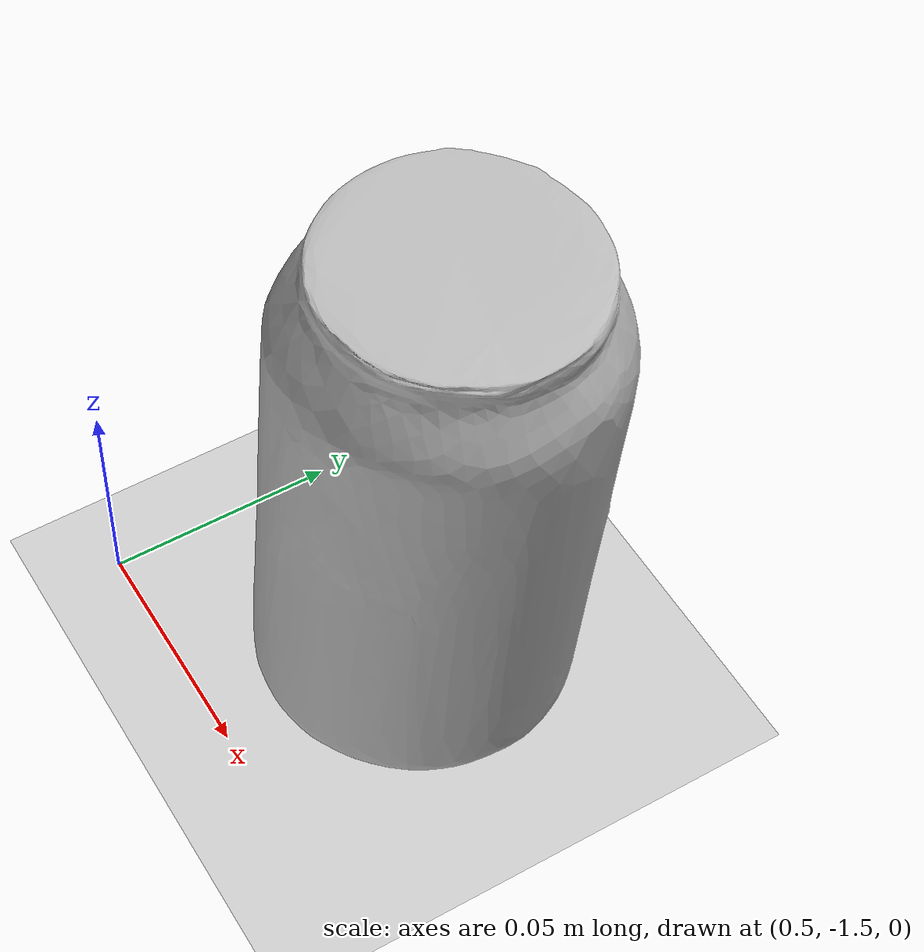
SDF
<sdf version="1.7">
 <world name="default">
  <light name="sun" type="directional">
   <pose>0 0 10 0 -0 0</pose>
   <diffuse>0.8 0.8 0.8 1</diffuse>
   <specular>0.2 0.2 0.2 1</specular>
   <attenuation>
    <range>1000</range>
    <constant>0.9</constant>
    <linear>0.01</linear>
    <quadratic>0.001</quadratic>
   </attenuation>
   <direction>-0.5 0.1 -0.9</direction>
   <spot><inner_angle>0</inner_angle><outer_angle>0</outer_angle><falloff>0</falloff></spot>
  </light>
  <model name="ground_plane">
   <static>1</static>
   <link name="link">
    <collision name="collision">
     <geometry><plane><normal>0 0 1</normal><size>100 100</size></plane></geometry>
     <surface>
      <contact><collide_bitmask>65535</collide_bitmask></contact>
      <friction><ode><mu>100</mu><mu2>50</mu2></ode></friction>
     </surface>
    </collision>
    <visual name="visual">
     <cast_shadows>0</cast_shadows>
     <geometry><plane><normal>0 0 1</normal><size>100 100</size></plane></geometry>
     <material>
      <script><uri>file://media/materials/scripts/gazebo.material</uri><name>Gazebo/Grey</name></script>
     </material>
    </visual>
   </link>
  </model>
  <gravity>0 0 -9.8</gravity>
  <magnetic_field>6e-06 2.3e-05 -4.2e-05</magnetic_field>
  <atmosphere type="adiabatic"/>
  <physics type="ode">
   <max_step_size>0.001</max_step_size>
   <real_time_factor>1</real_time_factor>
   <real_time_update_rate>1000</real_time_update_rate>
  </physics>
  <scene><ambient>0.4 0.4 0.4 1</ambient><background>0.7 0.7 0.7 1</background><shadows>1</shadows></scene>
  <audio><device>default</device></audio>
  <spherical_coordinates>
   <surface_model>EARTH_WGS84</surface_model>
   <latitude_deg>0</latitude_deg>
   <longitude_deg>0</longitude_deg>
   <elevation>0</elevation>
   <heading_deg>0</heading_deg>
  </spherical_coordinates>
  <model name="coke_can">
   <link name="link">
    <inertial>
     <pose>0 0 0.06 0 -0 0</pose>
     <mass>0.39</mass>
     <inertia>
      <ixx>0.00055575</ixx>
      <ixy>0</ixy>
      <ixz>0</ixz>
      <iyy>0.00055575</iyy>
      <iyz>0</iyz>
      <izz>0.0001755</izz>
     </inertia>
    </inertial>
    <collision name="collision">
     <pose>0.003937 0.004724 -0.18 0 -0 0</pose>
     <geometry><mesh><uri>model://coke_can/meshes/coke_can.dae</uri></mesh></geometry>
     <surface>
      <friction><ode><mu>1</mu><mu2>1</mu2></ode></friction>
      <contact><ode><kp>1e+07</kp><kd>1</kd><min_depth>0.001</min_depth><max_vel>0.1</max_vel></ode></contact>
     </surface>
    </collision>
    <visual name="visual">
     <pose>0.003937 0.004724 -0.18 0 -0 0</pose>
     <geometry><mesh><uri>model://coke_can/meshes/coke_can.dae</uri></mesh></geometry>
    </visual>
   </link>
   <pose>0.552076 -1.4572 -0.002723 -0.063079 0.002224 -0.65995</pose>
  </model>
 </world>
</sdf>
